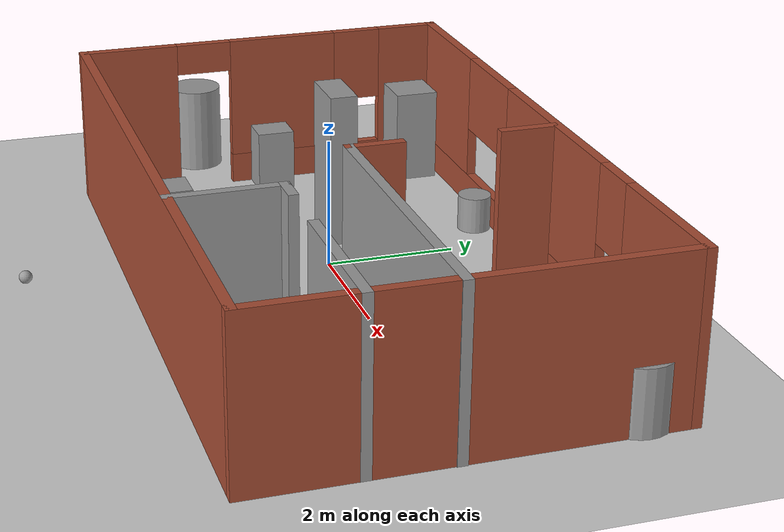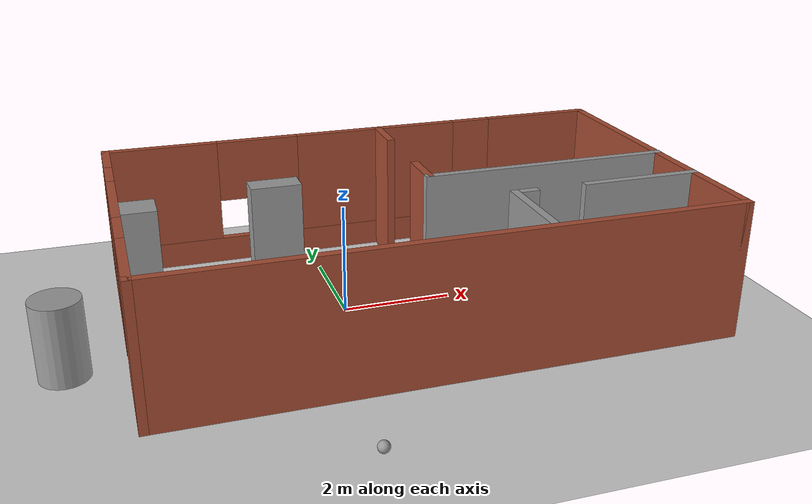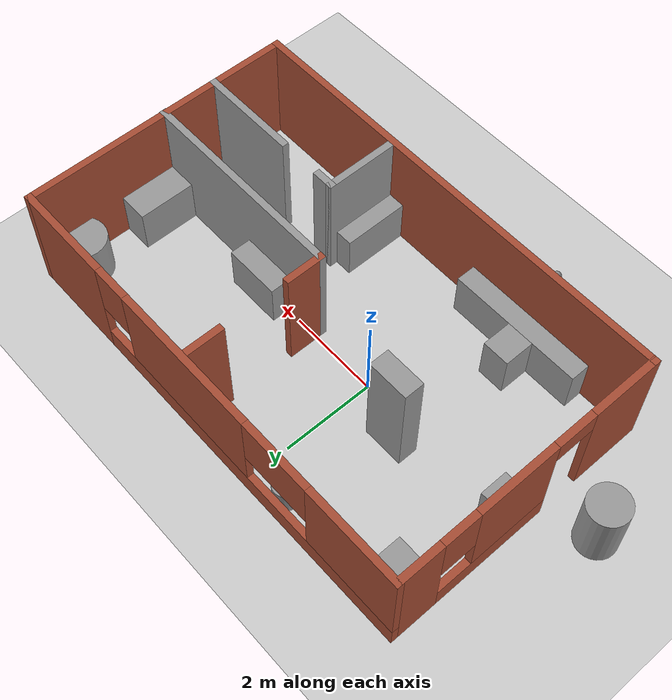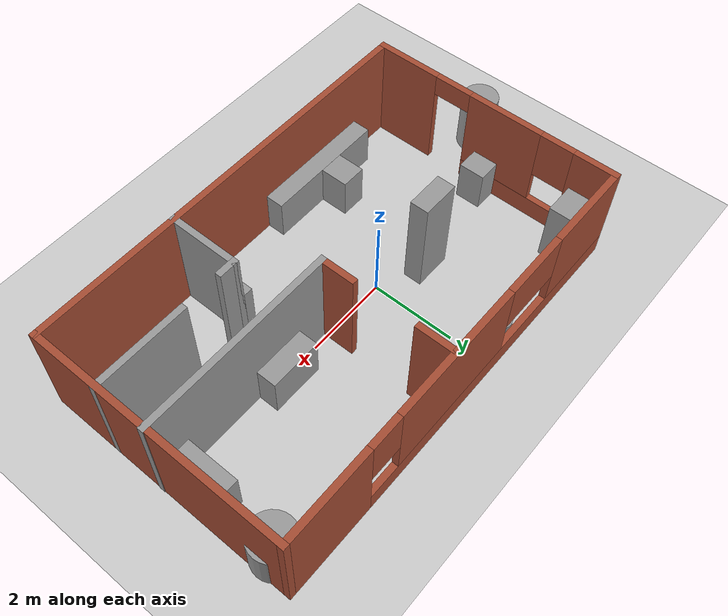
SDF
<sdf version="1.6">
 <world name="default">
  <plugin name="print_str" filename="libprint_str.so"/>
  <light name="sun" type="directional">
   <pose>0 0 10 0 -0 0</pose>
   <diffuse>0.8 0.8 0.8 1</diffuse>
   <specular>0.2 0.2 0.2 1</specular>
   <attenuation>
    <range>1000</range>
    <constant>0.9</constant>
    <linear>0.01</linear>
    <quadratic>0.001</quadratic>
   </attenuation>
   <direction>-0.5 0.1 -0.9</direction>
  </light>
  <model name="ground_plane">
   <static>1</static>
   <link name="link">
    <collision name="collision">
     <geometry><plane><normal>0 0 1</normal><size>100 100</size></plane></geometry>
     <surface><friction><ode><mu>100</mu><mu2>50</mu2></ode></friction></surface>
    </collision>
    <visual name="visual">
     <cast_shadows>0</cast_shadows>
     <geometry><plane><normal>0 0 1</normal><size>100 100</size></plane></geometry>
     <material>
      <script><uri>file://media/materials/scripts/gazebo.material</uri><name>Gazebo/Grey</name></script>
     </material>
    </visual>
   </link>
  </model>
  <gravity>0 0 -9.8</gravity>
  <magnetic_field>6e-06 2.3e-05 -4.2e-05</magnetic_field>
  <atmosphere type="adiabatic"/>
  <physics name="default_physics" default="0" type="ode">
   <max_step_size>0.001</max_step_size>
   <real_time_factor>1</real_time_factor>
   <real_time_update_rate>1000</real_time_update_rate>
  </physics>
  <scene><ambient>0.4 0.4 0.4 1</ambient><background>0.7 0.7 0.7 1</background><shadows>1</shadows></scene>
  <spherical_coordinates>
   <surface_model>EARTH_WGS84</surface_model>
   <latitude_deg>0</latitude_deg>
   <longitude_deg>0</longitude_deg>
   <elevation>0</elevation>
   <heading_deg>0</heading_deg>
  </spherical_coordinates>
  <model name="building">
   <pose>1.13498 -0.00519 0 0 -0 0</pose>
   <link name="Wall_1">
    <collision name="Wall_1_Collision">
     <geometry><box><size>10.15 0.15 2.5</size></box></geometry>
     <pose>0 0 1.25 0 -0 0</pose>
    </collision>
    <visual name="Wall_1_Visual">
     <pose>0 0 1.25 0 -0 0</pose>
     <geometry><box><size>10.15 0.15 2.5</size></box></geometry>
     <material>
      <script><uri>file://media/materials/scripts/gazebo.material</uri><name>Gazebo/Bricks</name></script>
      <ambient>0.760784 0.662745 0.627451 1</ambient>
     </material>
     <meta><layer>0</layer></meta>
    </visual>
    <pose>-0.006393 -3 0 0 -0 0</pose>
   </link>
   <link name="Wall_11">
    <collision name="Wall_11_Collision">
     <geometry><box><size>2.25 0.15 2.5</size></box></geometry>
     <pose>0 0 1.25 0 -0 0</pose>
    </collision>
    <visual name="Wall_11_Visual">
     <pose>0 0 1.25 0 -0 0</pose>
     <geometry><box><size>2.25 0.15 2.5</size></box></geometry>
     <material>
      <script><uri>file://media/materials/scripts/gazebo.material</uri><name>Gazebo/Grey</name></script>
      <ambient>1 1 1 1</ambient>
     </material>
     <meta><layer>0</layer></meta>
    </visual>
    <pose>3.94466 -1.38999 0 0 -0 3.14159</pose>
   </link>
   <link name="Wall_14">
    <collision name="Wall_14_Collision">
     <geometry><box><size>4.75 0.15 2.5</size></box></geometry>
     <pose>0 0 1.25 0 -0 0</pose>
    </collision>
    <visual name="Wall_14_Visual">
     <pose>0 0 1.25 0 -0 0</pose>
     <geometry><box><size>4.75 0.15 2.5</size></box></geometry>
     <material>
      <script><uri>file://media/materials/scripts/gazebo.material</uri><name>Gazebo/Grey</name></script>
      <ambient>1 1 1 1</ambient>
     </material>
     <meta><layer>0</layer></meta>
    </visual>
    <pose>2.70639 -0.159246 0 0 -0 3.14149</pose>
   </link>
   <link name="Wall_16">
    <collision name="Wall_16_Collision">
     <geometry><box><size>0.9 0.15 2.5</size></box></geometry>
     <pose>0 0 1.25 0 -0 0</pose>
    </collision>
    <visual name="Wall_16_Visual">
     <pose>0 0 1.25 0 -0 0</pose>
     <geometry><box><size>0.9 0.15 2.5</size></box></geometry>
     <material>
      <script><uri>file://media/materials/scripts/gazebo.material</uri><name>Gazebo/Bricks</name></script>
      <ambient>1 1 1 1</ambient>
     </material>
     <meta><layer>0</layer></meta>
    </visual>
    <pose>0.406607 0.216 0 0 -0 1.5708</pose>
   </link>
   <link name="Wall_2">
    <collision name="Wall_2_Collision">
     <geometry><box><size>6.15 0.15 2.5</size></box></geometry>
     <pose>0 0 1.25 0 -0 0</pose>
    </collision>
    <visual name="Wall_2_Visual">
     <pose>0 0 1.25 0 -0 0</pose>
     <geometry><box><size>6.15 0.15 2.5</size></box></geometry>
     <material>
      <script><uri>file://media/materials/scripts/gazebo.material</uri><name>Gazebo/Bricks</name></script>
      <ambient>1 1 1 1</ambient>
     </material>
     <meta><layer>0</layer></meta>
    </visual>
    <pose>4.99361 0 0 0 -0 1.5708</pose>
   </link>
   <link name="Wall_21">
    <collision name="Wall_21_Collision">
     <geometry><box><size>0.9 0.15 2.5</size></box></geometry>
     <pose>0 0 1.25 0 -0 0</pose>
    </collision>
    <visual name="Wall_21_Visual">
     <pose>0 0 1.25 0 -0 0</pose>
     <geometry><box><size>0.9 0.15 2.5</size></box></geometry>
     <material>
      <script><uri>file://media/materials/scripts/gazebo.material</uri><name>Gazebo/Bricks</name></script>
      <ambient>1 1 1 1</ambient>
     </material>
     <meta><layer>0</layer></meta>
    </visual>
    <pose>0.406607 2.548 0 0 0 -1.5708</pose>
   </link>
   <link name="Wall_3">
    <pose>-0.006393 3 0 0 -0 3.14159</pose>
    <visual name="Wall_3_Visual_0">
     <pose>-3.95578 0 1.25 0 -0 0</pose>
     <geometry><box><size>2.23845 0.15 2.5</size></box></geometry>
     <material>
      <script><uri>file://media/materials/scripts/gazebo.material</uri><name>Gazebo/Bricks</name></script>
      <ambient>0.760784 0.662745 0.627451 1</ambient>
     </material>
     <meta><layer>0</layer></meta>
    </visual>
    <collision name="Wall_3_Collision_0">
     <geometry><box><size>2.23845 0.15 2.5</size></box></geometry>
     <pose>-3.95578 0 1.25 0 -0 0</pose>
    </collision>
    <visual name="Wall_3_Visual_1">
     <pose>1.11922 0 0.25 0 -0 0</pose>
     <geometry><box><size>7.91155 0.15 0.5</size></box></geometry>
     <material>
      <script><uri>file://media/materials/scripts/gazebo.material</uri><name>Gazebo/Bricks</name></script>
      <ambient>0.760784 0.662745 0.627451 1</ambient>
     </material>
     <meta><layer>0</layer></meta>
    </visual>
    <collision name="Wall_3_Collision_1">
     <geometry><box><size>7.91155 0.15 0.5</size></box></geometry>
     <pose>1.11922 0 0.25 0 -0 0</pose>
    </collision>
    <visual name="Wall_3_Visual_2">
     <pose>-0.371055 0 1.5 0 -0 0</pose>
     <geometry><box><size>3.331 0.15 2</size></box></geometry>
     <material>
      <script><uri>file://media/materials/scripts/gazebo.material</uri><name>Gazebo/Bricks</name></script>
      <ambient>0.760784 0.662745 0.627451 1</ambient>
     </material>
     <meta><layer>0</layer></meta>
    </visual>
    <collision name="Wall_3_Collision_2">
     <geometry><box><size>3.331 0.15 2</size></box></geometry>
     <pose>-0.371055 0 1.5 0 -0 0</pose>
    </collision>
    <visual name="Wall_3_Visual_3">
     <pose>3.98472 0 1.5 0 -0 0</pose>
     <geometry><box><size>2.18056 0.15 2</size></box></geometry>
     <material>
      <script><uri>file://media/materials/scripts/gazebo.material</uri><name>Gazebo/Bricks</name></script>
      <ambient>0.760784 0.662745 0.627451 1</ambient>
     </material>
     <meta><layer>0</layer></meta>
    </visual>
    <collision name="Wall_3_Collision_3">
     <geometry><box><size>2.18056 0.15 2</size></box></geometry>
     <pose>3.98472 0 1.5 0 -0 0</pose>
    </collision>
    <visual name="Wall_3_Visual_4">
     <pose>-2.43655 0 1.9 0 -0 0</pose>
     <geometry><box><size>0.8 0.15 1.2</size></box></geometry>
     <material>
      <script><uri>file://media/materials/scripts/gazebo.material</uri><name>Gazebo/Bricks</name></script>
      <ambient>0.760784 0.662745 0.627451 1</ambient>
     </material>
     <meta><layer>0</layer></meta>
    </visual>
    <collision name="Wall_3_Collision_4">
     <geometry><box><size>0.8 0.15 1.2</size></box></geometry>
     <pose>-2.43655 0 1.9 0 -0 0</pose>
    </collision>
    <visual name="Wall_3_Visual_5">
     <pose>2.09444 0 1.9 0 -0 0</pose>
     <geometry><box><size>1.6 0.15 1.2</size></box></geometry>
     <material>
      <script><uri>file://media/materials/scripts/gazebo.material</uri><name>Gazebo/Bricks</name></script>
      <ambient>0.760784 0.662745 0.627451 1</ambient>
     </material>
     <meta><layer>0</layer></meta>
    </visual>
    <collision name="Wall_3_Collision_5">
     <geometry><box><size>1.6 0.15 1.2</size></box></geometry>
     <pose>2.09444 0 1.9 0 -0 0</pose>
    </collision>
   </link>
   <link name="Wall_4">
    <pose>-5.00639 0 0 0 0 -1.5708</pose>
    <visual name="Wall_4_Visual_0">
     <pose>-2.55475 0 1.25 0 -0 0</pose>
     <geometry><box><size>1.04049 0.15 2.5</size></box></geometry>
     <material>
      <script><uri>file://media/materials/scripts/gazebo.material</uri><name>Gazebo/Bricks</name></script>
      <ambient>1 1 1 1</ambient>
     </material>
     <meta><layer>0</layer></meta>
    </visual>
    <collision name="Wall_4_Collision_0">
     <geometry><box><size>1.04049 0.15 2.5</size></box></geometry>
     <pose>-2.55475 0 1.25 0 -0 0</pose>
    </collision>
    <visual name="Wall_4_Visual_1">
     <pose>2.2735 0 1.25 0 -0 0</pose>
     <geometry><box><size>1.60301 0.15 2.5</size></box></geometry>
     <material>
      <script><uri>file://media/materials/scripts/gazebo.material</uri><name>Gazebo/Bricks</name></script>
      <ambient>1 1 1 1</ambient>
     </material>
     <meta><layer>0</layer></meta>
    </visual>
    <collision name="Wall_4_Collision_1">
     <geometry><box><size>1.60301 0.15 2.5</size></box></geometry>
     <pose>2.2735 0 1.25 0 -0 0</pose>
    </collision>
    <visual name="Wall_4_Visual_2">
     <pose>-0.731257 0 0.25 0 -0 0</pose>
     <geometry><box><size>2.6065 0.15 0.5</size></box></geometry>
     <material>
      <script><uri>file://media/materials/scripts/gazebo.material</uri><name>Gazebo/Bricks</name></script>
      <ambient>1 1 1 1</ambient>
     </material>
     <meta><layer>0</layer></meta>
    </visual>
    <collision name="Wall_4_Collision_2">
     <geometry><box><size>2.6065 0.15 0.5</size></box></geometry>
     <pose>-0.731257 0 0.25 0 -0 0</pose>
    </collision>
    <visual name="Wall_4_Visual_3">
     <pose>-0.331257 0 1.5 0 -0 0</pose>
     <geometry><box><size>1.8065 0.15 2</size></box></geometry>
     <material>
      <script><uri>file://media/materials/scripts/gazebo.material</uri><name>Gazebo/Bricks</name></script>
      <ambient>1 1 1 1</ambient>
     </material>
     <meta><layer>0</layer></meta>
    </visual>
    <collision name="Wall_4_Collision_3">
     <geometry><box><size>1.8065 0.15 2</size></box></geometry>
     <pose>-0.331257 0 1.5 0 -0 0</pose>
    </collision>
    <visual name="Wall_4_Visual_4">
     <pose>-1.63451 0 1.9 0 -0 0</pose>
     <geometry><box><size>0.8 0.15 1.2</size></box></geometry>
     <material>
      <script><uri>file://media/materials/scripts/gazebo.material</uri><name>Gazebo/Bricks</name></script>
      <ambient>1 1 1 1</ambient>
     </material>
     <meta><layer>0</layer></meta>
    </visual>
    <collision name="Wall_4_Collision_4">
     <geometry><box><size>0.8 0.15 1.2</size></box></geometry>
     <pose>-1.63451 0 1.9 0 -0 0</pose>
    </collision>
    <visual name="Wall_4_Visual_5">
     <pose>1.02199 0 2.25 0 -0 0</pose>
     <geometry><box><size>0.9 0.15 0.5</size></box></geometry>
     <material>
      <script><uri>file://media/materials/scripts/gazebo.material</uri><name>Gazebo/Bricks</name></script>
      <ambient>1 1 1 1</ambient>
     </material>
     <meta><layer>0</layer></meta>
    </visual>
    <collision name="Wall_4_Collision_5">
     <geometry><box><size>0.9 0.15 0.5</size></box></geometry>
     <pose>1.02199 0 2.25 0 -0 0</pose>
    </collision>
   </link>
   <link name="Wall_6">
    <collision name="Wall_6_Collision">
     <geometry><box><size>1.75 0.15 2.5</size></box></geometry>
     <pose>0 0 1.25 0 -0 0</pose>
    </collision>
    <visual name="Wall_6_Visual">
     <pose>0 0 1.25 0 -0 0</pose>
     <geometry><box><size>1.75 0.15 2.5</size></box></geometry>
     <material>
      <script><uri>file://media/materials/scripts/gazebo.material</uri><name>Gazebo/Grey</name></script>
      <ambient>1 1 1 1</ambient>
     </material>
     <meta><layer>0</layer></meta>
    </visual>
    <pose>1.52166 -2.19999 0 0 -0 1.5708</pose>
   </link>
   <link name="Wall_7">
    <collision name="Wall_7_Collision">
     <geometry><box><size>0.5 0.15 2.5</size></box></geometry>
     <pose>0 0 1.25 0 -0 0</pose>
    </collision>
    <visual name="Wall_7_Visual">
     <pose>0 0 1.25 0 -0 0</pose>
     <geometry><box><size>0.5 0.15 2.5</size></box></geometry>
     <material>
      <script><uri>file://media/materials/scripts/gazebo.material</uri><name>Gazebo/Grey</name></script>
      <ambient>1 1 1 1</ambient>
     </material>
     <meta><layer>0</layer></meta>
    </visual>
    <pose>1.69666 -1.39999 0 0 -0 0</pose>
   </link>
   <static>1</static>
  </model>
  <model name="my_ball">
   <link name="link">
    <inertial>
     <mass>1</mass>
     <inertia><ixx>0.1</ixx><ixy>0</ixy><ixz>0</ixz><iyy>0.1</iyy><iyz>0</iyz><izz>0.1</izz></inertia>
    </inertial>
    <visual name="visual">
     <geometry><sphere><radius>0.1</radius></sphere></geometry>
     <material>
      <script><name>Gazebo/Grey</name><uri>file://media/materials/scripts/gazebo.material</uri></script>
      <shader type="pixel"><normal_map>__default__</normal_map></shader>
      <ambient>1 1 1 1</ambient>
      <diffuse>1 1 1 1</diffuse>
      <specular>1 1 1 1</specular>
      <emissive>1 1 1 1</emissive>
     </material>
    </visual>
    <collision name="collision">
     <geometry><sphere><radius>0.1</radius></sphere></geometry>
     <surface>
      <friction>
       <ode><mu>1</mu><mu2>1</mu2><fdir1>0 0 0</fdir1><slip1>0</slip1><slip2>0</slip2></ode>
       <torsional>
        <coefficient>1</coefficient>
        <patch_radius>0</patch_radius>
        <surface_radius>0</surface_radius>
        <use_patch_radius>1</use_patch_radius>
        <ode><slip>0</slip></ode>
       </torsional>
      </friction>
      <bounce><restitution_coefficient>0</restitution_coefficient><threshold>1e+06</threshold></bounce>
      <contact>
       <collide_without_contact>0</collide_without_contact>
       <collide_without_contact_bitmask>1</collide_without_contact_bitmask>
       <collide_bitmask>1</collide_bitmask>
       <ode>
        <soft_cfm>0</soft_cfm>
        <soft_erp>0.2</soft_erp>
        <kp>1e+13</kp>
        <kd>1</kd>
        <max_vel>0.01</max_vel>
        <min_depth>0</min_depth>
       </ode>
       <bullet>
        <split_impulse>1</split_impulse>
        <split_impulse_penetration_threshold>-0.01</split_impulse_penetration_threshold>
        <soft_cfm>0</soft_cfm>
        <soft_erp>0.2</soft_erp>
        <kp>1e+13</kp>
        <kd>1</kd>
       </bullet>
      </contact>
     </surface>
    </collision>
   </link>
   <static>0</static>
   <pose>-0.655059 -4.54452 0.1 0 -0 0</pose>
  </model>
  <model name="unit_box">
   <pose>2.39601 -2.21785 0.5 0 -0 4e-06</pose>
   <link name="link">
    <inertial>
     <mass>1</mass>
     <inertia>
      <ixx>0.166667</ixx>
      <ixy>0</ixy>
      <ixz>0</ixz>
      <iyy>0.166667</iyy>
      <iyz>0</iyz>
      <izz>0.166667</izz>
     </inertia>
    </inertial>
    <collision name="collision"><geometry><box><size>0.371253 1.42466 1</size></box></geometry></collision>
    <visual name="visual">
     <geometry><box><size>0.371253 1.42466 1</size></box></geometry>
     <material>
      <script><name>Gazebo/Grey</name><uri>file://media/materials/scripts/gazebo.material</uri></script>
     </material>
    </visual>
   </link>
  </model>
  <model name="unit_box_0">
   <pose>-1.2735 -2.71744 0.499783 1e-06 0.000113 5.6e-05</pose>
   <link name="link">
    <inertial>
     <mass>1</mass>
     <inertia>
      <ixx>0.166667</ixx>
      <ixy>0</ixy>
      <ixz>0</ixz>
      <iyy>0.166667</iyy>
      <iyz>0</iyz>
      <izz>0.166667</izz>
     </inertia>
    </inertial>
    <collision name="collision"><geometry><box><size>2.97737 0.425192 1</size></box></geometry></collision>
    <visual name="visual">
     <geometry><box><size>2.97737 0.425192 1</size></box></geometry>
     <material>
      <script><name>Gazebo/Grey</name><uri>file://media/materials/scripts/gazebo.material</uri></script>
     </material>
    </visual>
   </link>
  </model>
  <model name="unit_box_1">
   <pose>5.73455 0.533856 0.5 0 0 -2.5e-05</pose>
   <link name="link">
    <inertial>
     <mass>1</mass>
     <inertia>
      <ixx>0.166667</ixx>
      <ixy>0</ixy>
      <ixz>0</ixz>
      <iyy>0.166667</iyy>
      <iyz>0</iyz>
      <izz>0.166667</izz>
     </inertia>
    </inertial>
    <collision name="collision"><geometry><box><size>0.638028 1.24688 1</size></box></geometry></collision>
    <visual name="visual">
     <geometry><box><size>0.638028 1.24688 1</size></box></geometry>
     <material>
      <script><name>Gazebo/Grey</name><uri>file://media/materials/scripts/gazebo.material</uri></script>
     </material>
    </visual>
   </link>
  </model>
  <model name="unit_box_2">
   <pose>-1.12906 0.449891 1.21782 0 2e-06 -6.9e-05</pose>
   <link name="link">
    <inertial>
     <mass>1</mass>
     <inertia>
      <ixx>0.166667</ixx>
      <ixy>0</ixy>
      <ixz>0</ixz>
      <iyy>0.166667</iyy>
      <iyz>0</iyz>
      <izz>0.166667</izz>
     </inertia>
    </inertial>
    <collision name="collision"><geometry><box><size>0.897881 0.432683 2.43563</size></box></geometry></collision>
    <visual name="visual">
     <geometry><box><size>0.897881 0.432683 2.43563</size></box></geometry>
     <material>
      <script><name>Gazebo/Grey</name><uri>file://media/materials/scripts/gazebo.material</uri></script>
     </material>
    </visual>
   </link>
  </model>
  <model name="unit_box_3">
   <pose>-3.43125 2.48763 0.76043 0 0 -4e-06</pose>
   <link name="link">
    <inertial>
     <mass>1</mass>
     <inertia>
      <ixx>0.166667</ixx>
      <ixy>0</ixy>
      <ixz>0</ixz>
      <iyy>0.166667</iyy>
      <iyz>0</iyz>
      <izz>0.166667</izz>
     </inertia>
    </inertial>
    <collision name="collision"><geometry><box><size>0.730297 0.703305 1.52086</size></box></geometry></collision>
    <visual name="visual">
     <geometry><box><size>0.730297 0.703305 1.52086</size></box></geometry>
     <material>
      <script><name>Gazebo/Grey</name><uri>file://media/materials/scripts/gazebo.material</uri></script>
     </material>
    </visual>
   </link>
  </model>
  <model name="unit_box_4">
   <pose>2.95912 0.142715 0.499996 0 -7e-06 -0.000102</pose>
   <link name="link">
    <inertial>
     <mass>1</mass>
     <inertia>
      <ixx>0.166667</ixx>
      <ixy>0</ixy>
      <ixz>0</ixz>
      <iyy>0.166667</iyy>
      <iyz>0</iyz>
      <izz>0.166667</izz>
     </inertia>
    </inertial>
    <collision name="collision"><geometry><box><size>1.23798 0.464111 1</size></box></geometry></collision>
    <visual name="visual">
     <geometry><box><size>1.23798 0.464111 1</size></box></geometry>
     <material>
      <script><name>Gazebo/Grey</name><uri>file://media/materials/scripts/gazebo.material</uri></script>
     </material>
    </visual>
   </link>
  </model>
  <model name="unit_cylinder">
   <pose>5.79081 2.33043 0.499997 3e-06 1e-06 -0</pose>
   <link name="link">
    <inertial>
     <mass>1</mass>
     <inertia><ixx>0.145833</ixx><ixy>0</ixy><ixz>0</ixz><iyy>0.145833</iyy><iyz>0</iyz><izz>0.125</izz></inertia>
    </inertial>
    <collision name="collision">
     <geometry><cylinder><radius>0.5</radius><length>1</length></cylinder></geometry>
    </collision>
    <visual name="visual">
     <geometry><cylinder><radius>0.5</radius><length>1</length></cylinder></geometry>
     <material>
      <script><name>Gazebo/Grey</name><uri>file://media/materials/scripts/gazebo.material</uri></script>
     </material>
    </visual>
   </link>
  </model>
  <model name="unit_cylinder_0">
   <pose>-0.73245 2.65715 0.285521 0 -0 3e-06</pose>
   <link name="link">
    <inertial>
     <mass>1</mass>
     <inertia><ixx>0.145833</ixx><ixy>0</ixy><ixz>0</ixz><iyy>0.145833</iyy><iyz>0</iyz><izz>0.125</izz></inertia>
    </inertial>
    <collision name="collision">
     <geometry><cylinder><radius>0.262664</radius><length>0.571043</length></cylinder></geometry>
    </collision>
    <visual name="visual">
     <geometry><cylinder><radius>0.262664</radius><length>0.571043</length></cylinder></geometry>
     <material>
      <script><name>Gazebo/Grey</name><uri>file://media/materials/scripts/gazebo.material</uri></script>
     </material>
    </visual>
   </link>
  </model>
  <model name="unit_cylinder_1">
   <pose>-4.94569 -0.95072 0.69783 0 -0 0</pose>
   <link name="link">
    <inertial>
     <mass>1</mass>
     <inertia><ixx>0.145833</ixx><ixy>0</ixy><ixz>0</ixz><iyy>0.145833</iyy><iyz>0</iyz><izz>0.125</izz></inertia>
    </inertial>
    <collision name="collision">
     <geometry><cylinder><radius>0.424977</radius><length>1.39566</length></cylinder></geometry>
    </collision>
    <visual name="visual">
     <geometry><cylinder><radius>0.424977</radius><length>1.39566</length></cylinder></geometry>
     <material>
      <script><name>Gazebo/Grey</name><uri>file://media/materials/scripts/gazebo.material</uri></script>
     </material>
    </visual>
   </link>
  </model>
  <model name="unit_box_5">
   <pose>-3.52648 0.057337 0.5 0 -0 0.000449</pose>
   <link name="link">
    <inertial>
     <mass>1</mass>
     <inertia>
      <ixx>0.166667</ixx>
      <ixy>0</ixy>
      <ixz>0</ixz>
      <iyy>0.166667</iyy>
      <iyz>0</iyz>
      <izz>0.166667</izz>
     </inertia>
    </inertial>
    <collision name="collision"><geometry><box><size>0.531612 0.610473 1</size></box></geometry></collision>
    <visual name="visual">
     <geometry><box><size>0.531612 0.610473 1</size></box></geometry>
     <material>
      <script><name>Gazebo/Grey</name><uri>file://media/materials/scripts/gazebo.material</uri></script>
     </material>
    </visual>
   </link>
  </model>
  <model name="unit_box_6">
   <pose>-1.44548 -2.17312 0.5 0 0 -0.001597</pose>
   <link name="link">
    <inertial>
     <mass>1</mass>
     <inertia>
      <ixx>0.166667</ixx>
      <ixy>0</ixy>
      <ixz>0</ixz>
      <iyy>0.166667</iyy>
      <iyz>0</iyz>
      <izz>0.166667</izz>
     </inertia>
    </inertial>
    <collision name="collision"><geometry><box><size>0.597978 0.662469 1</size></box></geometry></collision>
    <visual name="visual">
     <geometry><box><size>0.597978 0.662469 1</size></box></geometry>
     <material>
      <script><name>Gazebo/Grey</name><uri>file://media/materials/scripts/gazebo.material</uri></script>
     </material>
    </visual>
   </link>
  </model>
  <plugin filename="libcollision_map_creator.so" name="collision_map_creator"/>
 </world>
</sdf>
